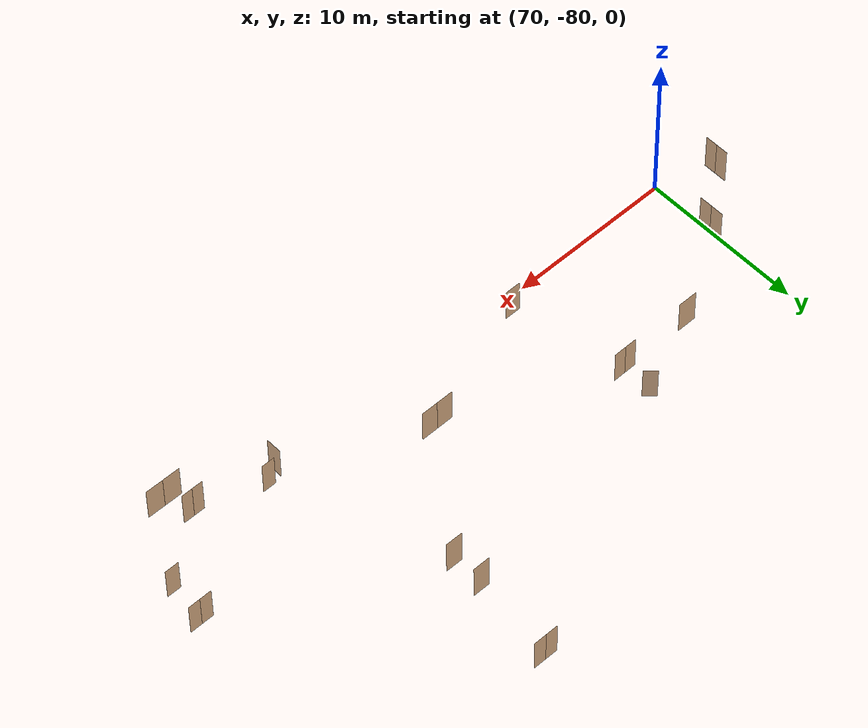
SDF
<sdf version="1.7">
 <world name="sim_world">
  <model name="p62">
   <pose>81.47435261177452 -79.1573879292466 0.0 0 0 3.141592653589793</pose>
   <link name="right">
    <pose>0 0 1.11 0 0 0</pose>
    <visual name="right_visual">
     <geometry><box><size>0.9654599863707654 0.03 2.2</size></box></geometry>
     <material>
      <ambient>0.5 0.25 0 0.6</ambient>
      <diffuse>0.5 0.25 0 0.6</diffuse>
      <pbr><metal><metalness>0.0</metalness></metal></pbr>
     </material>
    </visual>
    <collision name="right_collision">
     <geometry><box><size>0.9654599863707654 0.03 2.2</size></box></geometry>
     <surface><contact><collide_bitmask>0x02</collide_bitmask></contact></surface>
    </collision>
    <inertial>
     <mass>50.0</mass>
     <inertia><ixx>20.17041666666667</ixx><iyy>24.050470772012666</iyy><izz>3.887554105345994</izz></inertia>
    </inertial>
   </link>
   <joint name="right_joint" type="revolute">
    <parent>world</parent>
    <child>right</child>
    <axis><xyz>0 0 1</xyz><limit><lower>0</lower><upper>1.57</upper></limit></axis>
    <pose>0.4877299931853827 0 0 0 0 0</pose>
   </joint>
   <plugin name="register_component" filename="libregister_component.so">
    <component name="Door">
     <v_max_door>0.5</v_max_door>
     <a_max_door>0.3</a_max_door>
     <a_nom_door>0.15</a_nom_door>
     <dx_min_door>0.01</dx_min_door>
     <f_max_door>500.0</f_max_door>
     <ros_interface>true</ros_interface>
     <door name="p62" type="SwingDoor" left_joint_name="empty_joint" right_joint_name="right_joint"/>
    </component>
   </plugin>
  </model>
  <model name="p81">
   <pose>75.3273125240734 -72.33281236111527 0.0 0 0 0.0</pose>
   <link name="right">
    <pose>0 0 1.11 0 0 0</pose>
    <visual name="right_visual">
     <geometry><box><size>1.183320197920059 0.03 2.2</size></box></geometry>
     <material>
      <ambient>0.5 0.25 0 0.6</ambient>
      <diffuse>0.5 0.25 0 0.6</diffuse>
      <pbr><metal><metalness>0.0</metalness></metal></pbr>
     </material>
    </visual>
    <collision name="right_collision">
     <geometry><box><size>1.183320197920059 0.03 2.2</size></box></geometry>
     <surface><contact><collide_bitmask>0x02</collide_bitmask></contact></surface>
    </collision>
    <inertial>
     <mass>50.0</mass>
     <inertia><ixx>20.17041666666667</ixx><iyy>26.001027878356535</iyy><izz>5.838111211689864</izz></inertia>
    </inertial>
   </link>
   <joint name="right_joint" type="revolute">
    <parent>world</parent>
    <child>right</child>
    <axis><xyz>0 0 -1</xyz><limit><lower>0</lower><upper>1.57</upper></limit></axis>
    <pose>0.5966600989600295 0 0 0 0 0</pose>
   </joint>
   <plugin name="register_component" filename="libregister_component.so">
    <component name="Door">
     <v_max_door>0.5</v_max_door>
     <a_max_door>0.3</a_max_door>
     <a_nom_door>0.15</a_nom_door>
     <dx_min_door>0.01</dx_min_door>
     <f_max_door>500.0</f_max_door>
     <ros_interface>true</ros_interface>
     <door name="p81" type="SwingDoor" left_joint_name="empty_joint" right_joint_name="right_joint"/>
    </component>
   </plugin>
  </model>
  <model name="p82">
   <pose>79.90388803294722 -72.32976800687392 0.0 0 0 0.0040970508080911275</pose>
   <link name="right">
    <pose>0.3715309988782484 0 1.11 0 0 0</pose>
    <visual name="right_visual">
     <geometry><box><size>0.7330619977564968 0.03 2.2</size></box></geometry>
     <material>
      <ambient>0.5 0.25 0 0.6</ambient>
      <diffuse>0.5 0.25 0 0.6</diffuse>
      <pbr><metal><metalness>0.0</metalness></metal></pbr>
     </material>
    </visual>
    <collision name="right_collision">
     <geometry><box><size>0.7330619977564968 0.03 2.2</size></box></geometry>
     <surface><contact><collide_bitmask>0x02</collide_bitmask></contact></surface>
    </collision>
    <inertial>
     <mass>50.0</mass>
     <inertia><ixx>20.17041666666667</ixx><iyy>22.40574955231145</iyy><izz>2.2428328856447757</izz></inertia>
    </inertial>
   </link>
   <joint name="right_joint" type="revolute">
    <parent>world</parent>
    <child>right</child>
    <axis><xyz>0 0 1</xyz><limit><lower>0</lower><upper>1.57</upper></limit></axis>
    <pose>0.3715309988782484 0 0 0 0 0</pose>
   </joint>
   <link name="left">
    <pose>-0.3715309988782484 0 1.11 0 0 0</pose>
    <visual name="left_visual">
     <geometry><box><size>0.7330619977564968 0.03 2.2</size></box></geometry>
     <material>
      <ambient>0.5 0.25 0 0.6</ambient>
      <diffuse>0.5 0.25 0 0.6</diffuse>
      <pbr><metal><metalness>0.0</metalness></metal></pbr>
     </material>
    </visual>
    <collision name="left_collision">
     <geometry><box><size>0.7330619977564968 0.03 2.2</size></box></geometry>
     <surface><contact><collide_bitmask>0x02</collide_bitmask></contact></surface>
    </collision>
    <inertial>
     <mass>50.0</mass>
     <inertia><ixx>20.17041666666667</ixx><iyy>22.40574955231145</iyy><izz>2.2428328856447757</izz></inertia>
    </inertial>
   </link>
   <joint name="left_joint" type="revolute">
    <parent>world</parent>
    <child>left</child>
    <axis><xyz>0 0 1</xyz><limit><lower>-1.57</lower><upper>0</upper></limit></axis>
    <pose>-0.3715309988782484 0 0 0 0 0</pose>
   </joint>
   <plugin name="register_component" filename="libregister_component.so">
    <component name="Door">
     <v_max_door>0.5</v_max_door>
     <a_max_door>0.3</a_max_door>
     <a_nom_door>0.15</a_nom_door>
     <dx_min_door>0.01</dx_min_door>
     <f_max_door>500.0</f_max_door>
     <ros_interface>true</ros_interface>
     <door name="p82" type="DoubleSwingDoor" left_joint_name="left_joint" right_joint_name="right_joint"/>
    </component>
   </plugin>
  </model>
  <model name="p143">
   <pose>89.44247207490156 -76.457045717164 0.0 0 0 3.141592653589793</pose>
   <link name="right">
    <pose>0.517601330330951 0 1.11 0 0 0</pose>
    <visual name="right_visual">
     <geometry><box><size>1.025202660661902 0.03 2.2</size></box></geometry>
     <material>
      <ambient>0.5 0.25 0 0.6</ambient>
      <diffuse>0.5 0.25 0 0.6</diffuse>
      <pbr><metal><metalness>0.0</metalness></metal></pbr>
     </material>
    </visual>
    <collision name="right_collision">
     <geometry><box><size>1.025202660661902 0.03 2.2</size></box></geometry>
     <surface><contact><collide_bitmask>0x02</collide_bitmask></contact></surface>
    </collision>
    <inertial>
     <mass>50.0</mass>
     <inertia><ixx>20.17041666666667</ixx><iyy>24.54600206428435</iyy><izz>4.38308539761768</izz></inertia>
    </inertial>
   </link>
   <joint name="right_joint" type="prismatic">
    <parent>world</parent>
    <child>right</child>
    <axis>
     <xyz>1 0 0</xyz>
     <limit><lower>0.0</lower><upper>1.035202660661902</upper><effort>500.0</effort></limit>
    </axis>
   </joint>
   <link name="left">
    <pose>-0.517601330330951 0 1.11 0 0 0</pose>
    <visual name="left_visual">
     <geometry><box><size>1.025202660661902 0.03 2.2</size></box></geometry>
     <material>
      <ambient>0.5 0.25 0 0.6</ambient>
      <diffuse>0.5 0.25 0 0.6</diffuse>
      <pbr><metal><metalness>0.0</metalness></metal></pbr>
     </material>
    </visual>
    <collision name="left_collision">
     <geometry><box><size>1.025202660661902 0.03 2.2</size></box></geometry>
     <surface><contact><collide_bitmask>0x02</collide_bitmask></contact></surface>
    </collision>
    <inertial>
     <mass>50.0</mass>
     <inertia><ixx>20.17041666666667</ixx><iyy>24.54600206428435</iyy><izz>4.38308539761768</izz></inertia>
    </inertial>
   </link>
   <joint name="left_joint" type="prismatic">
    <parent>world</parent>
    <child>left</child>
    <axis>
     <xyz>1 0 0</xyz>
     <limit><lower>-1.035202660661902</lower><upper>0.0</upper><effort>500.0</effort></limit>
    </axis>
   </joint>
   <plugin name="register_component" filename="libregister_component.so">
    <component name="Door">
     <v_max_door>0.2</v_max_door>
     <a_max_door>0.2</a_max_door>
     <a_nom_door>0.08</a_nom_door>
     <dx_min_door>0.001</dx_min_door>
     <f_max_door>100.0</f_max_door>
     <ros_interface>true</ros_interface>
     <door name="p143" type="DoubleSlidingDoor" left_joint_name="left_joint" right_joint_name="right_joint"/>
    </component>
   </plugin>
  </model>
  <model name="p144">
   <pose>95.16168039465504 -62.46613804035441 0.0 0 0 3.1365730318237173</pose>
   <link name="right">
    <pose>0.3884656062716847 0 1.11 0 0 0</pose>
    <visual name="right_visual">
     <geometry><box><size>0.7669312125433694 0.03 2.2</size></box></geometry>
     <material>
      <ambient>0.5 0.25 0 0.6</ambient>
      <diffuse>0.5 0.25 0 0.6</diffuse>
      <pbr><metal><metalness>0.0</metalness></metal></pbr>
     </material>
    </visual>
    <collision name="right_collision">
     <geometry><box><size>0.7669312125433694 0.03 2.2</size></box></geometry>
     <surface><contact><collide_bitmask>0x02</collide_bitmask></contact></surface>
    </collision>
    <inertial>
     <mass>50.0</mass>
     <inertia><ixx>20.17041666666667</ixx><iyy>22.617431186555184</iyy><izz>2.454514519888512</izz></inertia>
    </inertial>
   </link>
   <joint name="right_joint" type="revolute">
    <parent>world</parent>
    <child>right</child>
    <axis><xyz>0 0 -1</xyz><limit><lower>0</lower><upper>1.57</upper></limit></axis>
    <pose>0.3884656062716847 0 0 0 0 0</pose>
   </joint>
   <link name="left">
    <pose>-0.3884656062716847 0 1.11 0 0 0</pose>
    <visual name="left_visual">
     <geometry><box><size>0.7669312125433694 0.03 2.2</size></box></geometry>
     <material>
      <ambient>0.5 0.25 0 0.6</ambient>
      <diffuse>0.5 0.25 0 0.6</diffuse>
      <pbr><metal><metalness>0.0</metalness></metal></pbr>
     </material>
    </visual>
    <collision name="left_collision">
     <geometry><box><size>0.7669312125433694 0.03 2.2</size></box></geometry>
     <surface><contact><collide_bitmask>0x02</collide_bitmask></contact></surface>
    </collision>
    <inertial>
     <mass>50.0</mass>
     <inertia><ixx>20.17041666666667</ixx><iyy>22.617431186555184</iyy><izz>2.454514519888512</izz></inertia>
    </inertial>
   </link>
   <joint name="left_joint" type="revolute">
    <parent>world</parent>
    <child>left</child>
    <axis><xyz>0 0 -1</xyz><limit><lower>-1.57</lower><upper>0</upper></limit></axis>
    <pose>-0.3884656062716847 0 0 0 0 0</pose>
   </joint>
   <plugin name="register_component" filename="libregister_component.so">
    <component name="Door">
     <v_max_door>0.5</v_max_door>
     <a_max_door>0.3</a_max_door>
     <a_nom_door>0.15</a_nom_door>
     <dx_min_door>0.01</dx_min_door>
     <f_max_door>500.0</f_max_door>
     <ros_interface>true</ros_interface>
     <door name="p144" type="DoubleSwingDoor" left_joint_name="left_joint" right_joint_name="right_joint"/>
    </component>
   </plugin>
  </model>
  <model name="p145">
   <pose>98.20962341856544 -79.66007303487311 0.0 0 0 3.140804438923719</pose>
   <link name="right">
    <pose>0 0 1.11 0 0 0</pose>
    <visual name="right_visual">
     <geometry><box><size>0.8075760295053583 0.03 2.2</size></box></geometry>
     <material>
      <ambient>0.5 0.25 0 0.6</ambient>
      <diffuse>0.5 0.25 0 0.6</diffuse>
      <pbr><metal><metalness>0.0</metalness></metal></pbr>
     </material>
    </visual>
    <collision name="right_collision">
     <geometry><box><size>0.8075760295053583 0.03 2.2</size></box></geometry>
     <surface><contact><collide_bitmask>0x02</collide_bitmask></contact></surface>
    </collision>
    <inertial>
     <mass>50.0</mass>
     <inertia><ixx>20.17041666666667</ixx><iyy>22.884079347631832</iyy><izz>2.7211626809651643</izz></inertia>
    </inertial>
   </link>
   <joint name="right_joint" type="revolute">
    <parent>world</parent>
    <child>right</child>
    <axis><xyz>0 0 1</xyz><limit><lower>0</lower><upper>1.57</upper></limit></axis>
    <pose>0.4087880147526792 0 0 0 0 0</pose>
   </joint>
   <plugin name="register_component" filename="libregister_component.so">
    <component name="Door">
     <v_max_door>0.5</v_max_door>
     <a_max_door>0.3</a_max_door>
     <a_nom_door>0.15</a_nom_door>
     <dx_min_door>0.01</dx_min_door>
     <f_max_door>500.0</f_max_door>
     <ros_interface>true</ros_interface>
     <door name="p145" type="SwingDoor" left_joint_name="empty_joint" right_joint_name="right_joint"/>
    </component>
   </plugin>
  </model>
  <model name="p146">
   <pose>97.3136277443632 -80.24410017480969 0.0 0 0 1.5707963267948966</pose>
   <link name="right">
    <pose>0 0 1.11 0 0 0</pose>
    <visual name="right_visual">
     <geometry><box><size>0.9181280554650237 0.03 2.2</size></box></geometry>
     <material>
      <ambient>0.5 0.25 0 0.6</ambient>
      <diffuse>0.5 0.25 0 0.6</diffuse>
      <pbr><metal><metalness>0.0</metalness></metal></pbr>
     </material>
    </visual>
    <collision name="right_collision">
     <geometry><box><size>0.9181280554650237 0.03 2.2</size></box></geometry>
     <surface><contact><collide_bitmask>0x02</collide_bitmask></contact></surface>
    </collision>
    <inertial>
     <mass>50.0</mass>
     <inertia><ixx>20.17041666666667</ixx><iyy>23.678996359299944</iyy><izz>3.516079692633274</izz></inertia>
    </inertial>
   </link>
   <joint name="right_joint" type="revolute">
    <parent>world</parent>
    <child>right</child>
    <axis><xyz>0 0 -1</xyz><limit><lower>0</lower><upper>1.57</upper></limit></axis>
    <pose>0.4640640277325119 0 0 0 0 0</pose>
   </joint>
   <plugin name="register_component" filename="libregister_component.so">
    <component name="Door">
     <v_max_door>0.5</v_max_door>
     <a_max_door>0.3</a_max_door>
     <a_nom_door>0.15</a_nom_door>
     <dx_min_door>0.01</dx_min_door>
     <f_max_door>500.0</f_max_door>
     <ros_interface>true</ros_interface>
     <door name="p146" type="SwingDoor" left_joint_name="empty_joint" right_joint_name="right_joint"/>
    </component>
   </plugin>
  </model>
  <model name="p147">
   <pose>102.82679772451193 -82.49584456756843 0.0 0 0 3.1309293104595715</pose>
   <link name="right">
    <pose>0.5480815881657279 0 1.11 0 0 0</pose>
    <visual name="right_visual">
     <geometry><box><size>1.0861631763314559 0.03 2.2</size></box></geometry>
     <material>
      <ambient>0.5 0.25 0 0.6</ambient>
      <diffuse>0.5 0.25 0 0.6</diffuse>
      <pbr><metal><metalness>0.0</metalness></metal></pbr>
     </material>
    </visual>
    <collision name="right_collision">
     <geometry><box><size>1.0861631763314559 0.03 2.2</size></box></geometry>
     <surface><contact><collide_bitmask>0x02</collide_bitmask></contact></surface>
    </collision>
    <inertial>
     <mass>50.0</mass>
     <inertia><ixx>20.17041666666667</ixx><iyy>25.08229352341016</iyy><izz>4.919376856743489</izz></inertia>
    </inertial>
   </link>
   <joint name="right_joint" type="revolute">
    <parent>world</parent>
    <child>right</child>
    <axis><xyz>0 0 -1</xyz><limit><lower>0</lower><upper>1.57</upper></limit></axis>
    <pose>0.5480815881657279 0 0 0 0 0</pose>
   </joint>
   <link name="left">
    <pose>-0.5480815881657279 0 1.11 0 0 0</pose>
    <visual name="left_visual">
     <geometry><box><size>1.0861631763314559 0.03 2.2</size></box></geometry>
     <material>
      <ambient>0.5 0.25 0 0.6</ambient>
      <diffuse>0.5 0.25 0 0.6</diffuse>
      <pbr><metal><metalness>0.0</metalness></metal></pbr>
     </material>
    </visual>
    <collision name="left_collision">
     <geometry><box><size>1.0861631763314559 0.03 2.2</size></box></geometry>
     <surface><contact><collide_bitmask>0x02</collide_bitmask></contact></surface>
    </collision>
    <inertial>
     <mass>50.0</mass>
     <inertia><ixx>20.17041666666667</ixx><iyy>25.08229352341016</iyy><izz>4.919376856743489</izz></inertia>
    </inertial>
   </link>
   <joint name="left_joint" type="revolute">
    <parent>world</parent>
    <child>left</child>
    <axis><xyz>0 0 -1</xyz><limit><lower>-1.57</lower><upper>0</upper></limit></axis>
    <pose>-0.5480815881657279 0 0 0 0 0</pose>
   </joint>
   <plugin name="register_component" filename="libregister_component.so">
    <component name="Door">
     <v_max_door>0.5</v_max_door>
     <a_max_door>0.3</a_max_door>
     <a_nom_door>0.15</a_nom_door>
     <dx_min_door>0.01</dx_min_door>
     <f_max_door>500.0</f_max_door>
     <ros_interface>true</ros_interface>
     <door name="p147" type="DoubleSwingDoor" left_joint_name="left_joint" right_joint_name="right_joint"/>
    </component>
   </plugin>
  </model>
  <model name="p149">
   <pose>105.94169432016835 -78.18659447127499 0.0 0 0 3.141592653589793</pose>
   <link name="right">
    <pose>0 0 1.11 0 0 0</pose>
    <visual name="right_visual">
     <geometry><box><size>0.8616408402714109 0.03 2.2</size></box></geometry>
     <material>
      <ambient>0.5 0.25 0 0.6</ambient>
      <diffuse>0.5 0.25 0 0.6</diffuse>
      <pbr><metal><metalness>0.0</metalness></metal></pbr>
     </material>
    </visual>
    <collision name="right_collision">
     <geometry><box><size>0.8616408402714109 0.03 2.2</size></box></geometry>
     <surface><contact><collide_bitmask>0x02</collide_bitmask></contact></surface>
    </collision>
    <inertial>
     <mass>50.0</mass>
     <inertia><ixx>20.17041666666667</ixx><iyy>23.2601039067651</iyy><izz>3.097187240098429</izz></inertia>
    </inertial>
   </link>
   <joint name="right_joint" type="revolute">
    <parent>world</parent>
    <child>right</child>
    <axis><xyz>0 0 1</xyz><limit><lower>0</lower><upper>1.57</upper></limit></axis>
    <pose>0.43582042013570543 0 0 0 0 0</pose>
   </joint>
   <plugin name="register_component" filename="libregister_component.so">
    <component name="Door">
     <v_max_door>0.5</v_max_door>
     <a_max_door>0.3</a_max_door>
     <a_nom_door>0.15</a_nom_door>
     <dx_min_door>0.01</dx_min_door>
     <f_max_door>500.0</f_max_door>
     <ros_interface>true</ros_interface>
     <door name="p149" type="SwingDoor" left_joint_name="empty_joint" right_joint_name="right_joint"/>
    </component>
   </plugin>
  </model>
  <model name="p150">
   <pose>106.17513184794532 -75.78728778406571 0.0 0 0 0.0</pose>
   <link name="right">
    <pose>0.3731056116855811 0 1.11 0 0 0</pose>
    <visual name="right_visual">
     <geometry><box><size>0.7362112233711622 0.03 2.2</size></box></geometry>
     <material>
      <ambient>0.5 0.25 0 0.6</ambient>
      <diffuse>0.5 0.25 0 0.6</diffuse>
      <pbr><metal><metalness>0.0</metalness></metal></pbr>
     </material>
    </visual>
    <collision name="right_collision">
     <geometry><box><size>0.7362112233711622 0.03 2.2</size></box></geometry>
     <surface><contact><collide_bitmask>0x02</collide_bitmask></contact></surface>
    </collision>
    <inertial>
     <mass>50.0</mass>
     <inertia><ixx>20.17041666666667</ixx><iyy>22.4250290225736</iyy><izz>2.2621123559069303</izz></inertia>
    </inertial>
   </link>
   <joint name="right_joint" type="revolute">
    <parent>world</parent>
    <child>right</child>
    <axis><xyz>0 0 -1</xyz><limit><lower>0</lower><upper>1.57</upper></limit></axis>
    <pose>0.3731056116855811 0 0 0 0 0</pose>
   </joint>
   <link name="left">
    <pose>-0.3731056116855811 0 1.11 0 0 0</pose>
    <visual name="left_visual">
     <geometry><box><size>0.7362112233711622 0.03 2.2</size></box></geometry>
     <material>
      <ambient>0.5 0.25 0 0.6</ambient>
      <diffuse>0.5 0.25 0 0.6</diffuse>
      <pbr><metal><metalness>0.0</metalness></metal></pbr>
     </material>
    </visual>
    <collision name="left_collision">
     <geometry><box><size>0.7362112233711622 0.03 2.2</size></box></geometry>
     <surface><contact><collide_bitmask>0x02</collide_bitmask></contact></surface>
    </collision>
    <inertial>
     <mass>50.0</mass>
     <inertia><ixx>20.17041666666667</ixx><iyy>22.4250290225736</iyy><izz>2.2621123559069303</izz></inertia>
    </inertial>
   </link>
   <joint name="left_joint" type="revolute">
    <parent>world</parent>
    <child>left</child>
    <axis><xyz>0 0 -1</xyz><limit><lower>-1.57</lower><upper>0</upper></limit></axis>
    <pose>-0.3731056116855811 0 0 0 0 0</pose>
   </joint>
   <plugin name="register_component" filename="libregister_component.so">
    <component name="Door">
     <v_max_door>0.5</v_max_door>
     <a_max_door>0.3</a_max_door>
     <a_nom_door>0.15</a_nom_door>
     <dx_min_door>0.01</dx_min_door>
     <f_max_door>500.0</f_max_door>
     <ros_interface>true</ros_interface>
     <door name="p150" type="DoubleSwingDoor" left_joint_name="left_joint" right_joint_name="right_joint"/>
    </component>
   </plugin>
  </model>
  <model name="door8">
   <pose>80.02386225593321 -70.35860418950554 0.0 0 0 2.371006668226176</pose>
   <link name="right">
    <pose>0 0 1.11 0 0 0</pose>
    <visual name="right_visual">
     <geometry><box><size>0.8142853797514022 0.03 2.2</size></box></geometry>
     <material>
      <ambient>0.5 0.25 0 0.6</ambient>
      <diffuse>0.5 0.25 0 0.6</diffuse>
      <pbr><metal><metalness>0.0</metalness></metal></pbr>
     </material>
    </visual>
    <collision name="right_collision">
     <geometry><box><size>0.8142853797514022 0.03 2.2</size></box></geometry>
     <surface><contact><collide_bitmask>0x02</collide_bitmask></contact></surface>
    </collision>
    <inertial>
     <mass>50.0</mass>
     <inertia><ixx>20.17041666666667</ixx><iyy>22.929419498653694</iyy><izz>2.766502831987023</izz></inertia>
    </inertial>
   </link>
   <joint name="right_joint" type="revolute">
    <parent>world</parent>
    <child>right</child>
    <axis><xyz>0 0 1</xyz><limit><lower>0</lower><upper>1.57</upper></limit></axis>
    <pose>0.41214268987570113 0 0 0 0 0</pose>
   </joint>
   <plugin name="register_component" filename="libregister_component.so">
    <component name="Door">
     <v_max_door>0.5</v_max_door>
     <a_max_door>0.3</a_max_door>
     <a_nom_door>0.15</a_nom_door>
     <dx_min_door>0.01</dx_min_door>
     <f_max_door>500.0</f_max_door>
     <ros_interface>true</ros_interface>
     <door name="door8" type="SwingDoor" left_joint_name="empty_joint" right_joint_name="right_joint"/>
    </component>
   </plugin>
  </model>
  <model name="puerta67">
   <pose>73.0090075925612 -73.18795203146507 5.0 0 0 1.5709493853957186</pose>
   <link name="right">
    <pose>0.38611119066447636 0 1.11 0 0 0</pose>
    <visual name="right_visual">
     <geometry><box><size>0.7622223813289527 0.03 2.2</size></box></geometry>
     <material>
      <ambient>0.5 0.25 0 0.6</ambient>
      <diffuse>0.5 0.25 0 0.6</diffuse>
      <pbr><metal><metalness>0.0</metalness></metal></pbr>
     </material>
    </visual>
    <collision name="right_collision">
     <geometry><box><size>0.7622223813289527 0.03 2.2</size></box></geometry>
     <surface><contact><collide_bitmask>0x02</collide_bitmask></contact></surface>
    </collision>
    <inertial>
     <mass>50.0</mass>
     <inertia><ixx>20.17041666666667</ixx><iyy>22.587428994161588</iyy><izz>2.4245123274949143</izz></inertia>
    </inertial>
   </link>
   <joint name="right_joint" type="revolute">
    <parent>world</parent>
    <child>right</child>
    <axis><xyz>0 0 -1</xyz><limit><lower>0</lower><upper>1.57</upper></limit></axis>
    <pose>0.38611119066447636 0 0 0 0 0</pose>
   </joint>
   <link name="left">
    <pose>-0.38611119066447636 0 1.11 0 0 0</pose>
    <visual name="left_visual">
     <geometry><box><size>0.7622223813289527 0.03 2.2</size></box></geometry>
     <material>
      <ambient>0.5 0.25 0 0.6</ambient>
      <diffuse>0.5 0.25 0 0.6</diffuse>
      <pbr><metal><metalness>0.0</metalness></metal></pbr>
     </material>
    </visual>
    <collision name="left_collision">
     <geometry><box><size>0.7622223813289527 0.03 2.2</size></box></geometry>
     <surface><contact><collide_bitmask>0x02</collide_bitmask></contact></surface>
    </collision>
    <inertial>
     <mass>50.0</mass>
     <inertia><ixx>20.17041666666667</ixx><iyy>22.587428994161588</iyy><izz>2.4245123274949143</izz></inertia>
    </inertial>
   </link>
   <joint name="left_joint" type="revolute">
    <parent>world</parent>
    <child>left</child>
    <axis><xyz>0 0 -1</xyz><limit><lower>-1.57</lower><upper>0</upper></limit></axis>
    <pose>-0.38611119066447636 0 0 0 0 0</pose>
   </joint>
   <plugin name="register_component" filename="libregister_component.so">
    <component name="Door">
     <v_max_door>0.5</v_max_door>
     <a_max_door>0.3</a_max_door>
     <a_nom_door>0.15</a_nom_door>
     <dx_min_door>0.01</dx_min_door>
     <f_max_door>500.0</f_max_door>
     <ros_interface>true</ros_interface>
     <door name="puerta67" type="DoubleSwingDoor" left_joint_name="left_joint" right_joint_name="right_joint"/>
    </component>
   </plugin>
  </model>
  <model name="puerta143">
   <pose>73.00978988685317 -73.12324427388299 10.0 0 0 1.5714854097783462</pose>
   <link name="right">
    <pose>0.35355653174273405 0 1.11 0 0 0</pose>
    <visual name="right_visual">
     <geometry><box><size>0.6971130634854681 0.03 2.2</size></box></geometry>
     <material>
      <ambient>0.5 0.25 0 0.6</ambient>
      <diffuse>0.5 0.25 0 0.6</diffuse>
      <pbr><metal><metalness>0.0</metalness></metal></pbr>
     </material>
    </visual>
    <collision name="right_collision">
     <geometry><box><size>0.6971130634854681 0.03 2.2</size></box></geometry>
     <surface><contact><collide_bitmask>0x02</collide_bitmask></contact></surface>
    </collision>
    <inertial>
     <mass>50.0</mass>
     <inertia><ixx>20.17041666666667</ixx><iyy>22.191527597008733</iyy><izz>2.02861093034206</izz></inertia>
    </inertial>
   </link>
   <joint name="right_joint" type="revolute">
    <parent>world</parent>
    <child>right</child>
    <axis><xyz>0 0 -1</xyz><limit><lower>0</lower><upper>1.57</upper></limit></axis>
    <pose>0.35355653174273405 0 0 0 0 0</pose>
   </joint>
   <link name="left">
    <pose>-0.35355653174273405 0 1.11 0 0 0</pose>
    <visual name="left_visual">
     <geometry><box><size>0.6971130634854681 0.03 2.2</size></box></geometry>
     <material>
      <ambient>0.5 0.25 0 0.6</ambient>
      <diffuse>0.5 0.25 0 0.6</diffuse>
      <pbr><metal><metalness>0.0</metalness></metal></pbr>
     </material>
    </visual>
    <collision name="left_collision">
     <geometry><box><size>0.6971130634854681 0.03 2.2</size></box></geometry>
     <surface><contact><collide_bitmask>0x02</collide_bitmask></contact></surface>
    </collision>
    <inertial>
     <mass>50.0</mass>
     <inertia><ixx>20.17041666666667</ixx><iyy>22.191527597008733</iyy><izz>2.02861093034206</izz></inertia>
    </inertial>
   </link>
   <joint name="left_joint" type="revolute">
    <parent>world</parent>
    <child>left</child>
    <axis><xyz>0 0 -1</xyz><limit><lower>-1.57</lower><upper>0</upper></limit></axis>
    <pose>-0.35355653174273405 0 0 0 0 0</pose>
   </joint>
   <plugin name="register_component" filename="libregister_component.so">
    <component name="Door">
     <v_max_door>0.5</v_max_door>
     <a_max_door>0.3</a_max_door>
     <a_nom_door>0.15</a_nom_door>
     <dx_min_door>0.01</dx_min_door>
     <f_max_door>500.0</f_max_door>
     <ros_interface>true</ros_interface>
     <door name="puerta143" type="DoubleSwingDoor" left_joint_name="left_joint" right_joint_name="right_joint"/>
    </component>
   </plugin>
  </model>
  <model name="puerta170">
   <pose>106.20877858139471 -75.4548025977352 10.0 0 0 -0.006440754403840756</pose>
   <link name="right">
    <pose>0.32012078910069874 0 1.11 0 0 0</pose>
    <visual name="right_visual">
     <geometry><box><size>0.6302415782013975 0.03 2.2</size></box></geometry>
     <material>
      <ambient>0.5 0.25 0 0.6</ambient>
      <diffuse>0.5 0.25 0 0.6</diffuse>
      <pbr><metal><metalness>0.0</metalness></metal></pbr>
     </material>
    </visual>
    <collision name="right_collision">
     <geometry><box><size>0.6302415782013975 0.03 2.2</size></box></geometry>
     <surface><contact><collide_bitmask>0x02</collide_bitmask></contact></surface>
    </collision>
    <inertial>
     <mass>50.0</mass>
     <inertia><ixx>20.17041666666667</ixx><iyy>21.82168519539079</iyy><izz>1.6587685287241176</izz></inertia>
    </inertial>
   </link>
   <joint name="right_joint" type="revolute">
    <parent>world</parent>
    <child>right</child>
    <axis><xyz>0 0 -1</xyz><limit><lower>0</lower><upper>1.57</upper></limit></axis>
    <pose>0.32012078910069874 0 0 0 0 0</pose>
   </joint>
   <link name="left">
    <pose>-0.32012078910069874 0 1.11 0 0 0</pose>
    <visual name="left_visual">
     <geometry><box><size>0.6302415782013975 0.03 2.2</size></box></geometry>
     <material>
      <ambient>0.5 0.25 0 0.6</ambient>
      <diffuse>0.5 0.25 0 0.6</diffuse>
      <pbr><metal><metalness>0.0</metalness></metal></pbr>
     </material>
    </visual>
    <collision name="left_collision">
     <geometry><box><size>0.6302415782013975 0.03 2.2</size></box></geometry>
     <surface><contact><collide_bitmask>0x02</collide_bitmask></contact></surface>
    </collision>
    <inertial>
     <mass>50.0</mass>
     <inertia><ixx>20.17041666666667</ixx><iyy>21.82168519539079</iyy><izz>1.6587685287241176</izz></inertia>
    </inertial>
   </link>
   <joint name="left_joint" type="revolute">
    <parent>world</parent>
    <child>left</child>
    <axis><xyz>0 0 -1</xyz><limit><lower>-1.57</lower><upper>0</upper></limit></axis>
    <pose>-0.32012078910069874 0 0 0 0 0</pose>
   </joint>
   <plugin name="register_component" filename="libregister_component.so">
    <component name="Door">
     <v_max_door>0.5</v_max_door>
     <a_max_door>0.3</a_max_door>
     <a_nom_door>0.15</a_nom_door>
     <dx_min_door>0.01</dx_min_door>
     <f_max_door>500.0</f_max_door>
     <ros_interface>true</ros_interface>
     <door name="puerta170" type="DoubleSwingDoor" left_joint_name="left_joint" right_joint_name="right_joint"/>
    </component>
   </plugin>
  </model>
  <model name="puerta179">
   <pose>99.13633514671528 -62.873935721710964 10.0 0 0 3.1399490631133338</pose>
   <link name="right">
    <pose>0 0 1.11 0 0 0</pose>
    <visual name="right_visual">
     <geometry><box><size>0.9910254568447241 0.03 2.2</size></box></geometry>
     <material>
      <ambient>0.5 0.25 0 0.6</ambient>
      <diffuse>0.5 0.25 0 0.6</diffuse>
      <pbr><metal><metalness>0.0</metalness></metal></pbr>
     </material>
    </visual>
    <collision name="right_collision">
     <geometry><box><size>0.9910254568447241 0.03 2.2</size></box></geometry>
     <surface><contact><collide_bitmask>0x02</collide_bitmask></contact></surface>
    </collision>
    <inertial>
     <mass>50.0</mass>
     <inertia><ixx>20.17041666666667</ixx><iyy>24.258881067142894</iyy><izz>4.095964400476226</izz></inertia>
    </inertial>
   </link>
   <joint name="right_joint" type="revolute">
    <parent>world</parent>
    <child>right</child>
    <axis><xyz>0 0 -1</xyz><limit><lower>0</lower><upper>1.57</upper></limit></axis>
    <pose>0.500512728422362 0 0 0 0 0</pose>
   </joint>
   <plugin name="register_component" filename="libregister_component.so">
    <component name="Door">
     <v_max_door>0.5</v_max_door>
     <a_max_door>0.3</a_max_door>
     <a_nom_door>0.15</a_nom_door>
     <dx_min_door>0.01</dx_min_door>
     <f_max_door>500.0</f_max_door>
     <ros_interface>true</ros_interface>
     <door name="puerta179" type="SwingDoor" left_joint_name="empty_joint" right_joint_name="right_joint"/>
    </component>
   </plugin>
  </model>
  <model name="puerta180">
   <pose>99.12010561401058 -64.77709701878169 10.0 0 0 3.1353470087692066</pose>
   <link name="right">
    <pose>0 0 1.11 0 0 0</pose>
    <visual name="right_visual">
     <geometry><box><size>0.9831099527712375 0.03 2.2</size></box></geometry>
     <material>
      <ambient>0.5 0.25 0 0.6</ambient>
      <diffuse>0.5 0.25 0 0.6</diffuse>
      <pbr><metal><metalness>0.0</metalness></metal></pbr>
     </material>
    </visual>
    <collision name="right_collision">
     <geometry><box><size>0.9831099527712375 0.03 2.2</size></box></geometry>
     <surface><contact><collide_bitmask>0x02</collide_bitmask></contact></surface>
    </collision>
    <inertial>
     <mass>50.0</mass>
     <inertia><ixx>20.17041666666667</ixx><iyy>24.193771580157772</iyy><izz>4.030854913491103</izz></inertia>
    </inertial>
   </link>
   <joint name="right_joint" type="revolute">
    <parent>world</parent>
    <child>right</child>
    <axis><xyz>0 0 1</xyz><limit><lower>0</lower><upper>1.57</upper></limit></axis>
    <pose>0.49655497638561874 0 0 0 0 0</pose>
   </joint>
   <plugin name="register_component" filename="libregister_component.so">
    <component name="Door">
     <v_max_door>0.5</v_max_door>
     <a_max_door>0.3</a_max_door>
     <a_nom_door>0.15</a_nom_door>
     <dx_min_door>0.01</dx_min_door>
     <f_max_door>500.0</f_max_door>
     <ros_interface>true</ros_interface>
     <door name="puerta180" type="SwingDoor" left_joint_name="empty_joint" right_joint_name="right_joint"/>
    </component>
   </plugin>
  </model>
 </world>
</sdf>
